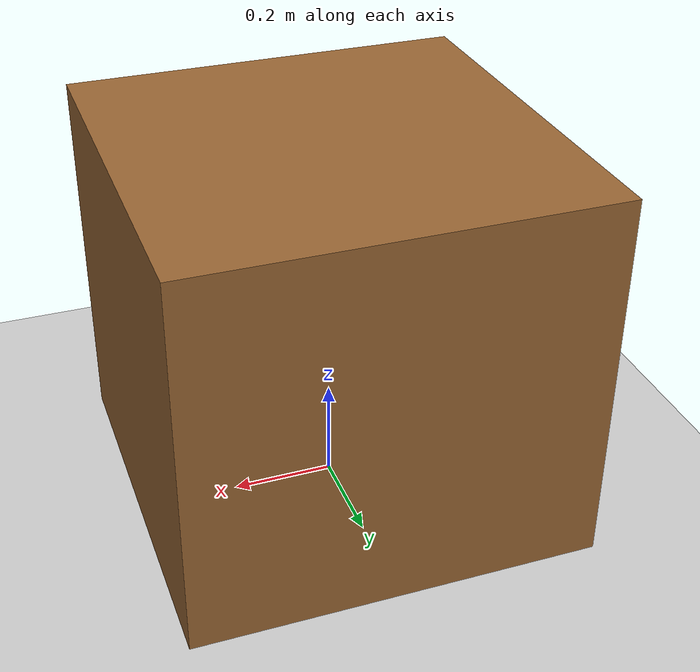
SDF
<?xml version="1.0" ?>
<sdf version="1.6">
  <world name="openarm_world">

    <include>
      <uri>model://ground_plane</uri>
    </include>

    <include>
      <uri>model://sun</uri>
    </include>

    <!-- Table for the robot to sit on -->
    <model name="table">
      <static>true</static>
      <link name="link">
        <collision name="collision">
          <geometry>
            <box><size>0.8 0.8 0.75</size></box>
          </geometry>
        </collision>
        <visual name="visual">
          <geometry>
            <box><size>0.8 0.8 0.75</size></box>
          </geometry>
          <material>
            <ambient>0.6 0.4 0.2 1</ambient>
            <diffuse>0.6 0.4 0.2 1</diffuse>
          </material>
        </visual>
      </link>
      <pose>0 0 0.375 0 0 0</pose>
    </model>

    <physics type="ode">
      <max_step_size>0.001</max_step_size>
      <real_time_factor>1</real_time_factor>
      <real_time_update_rate>1000</real_time_update_rate>
    </physics>

  </world>
</sdf>
